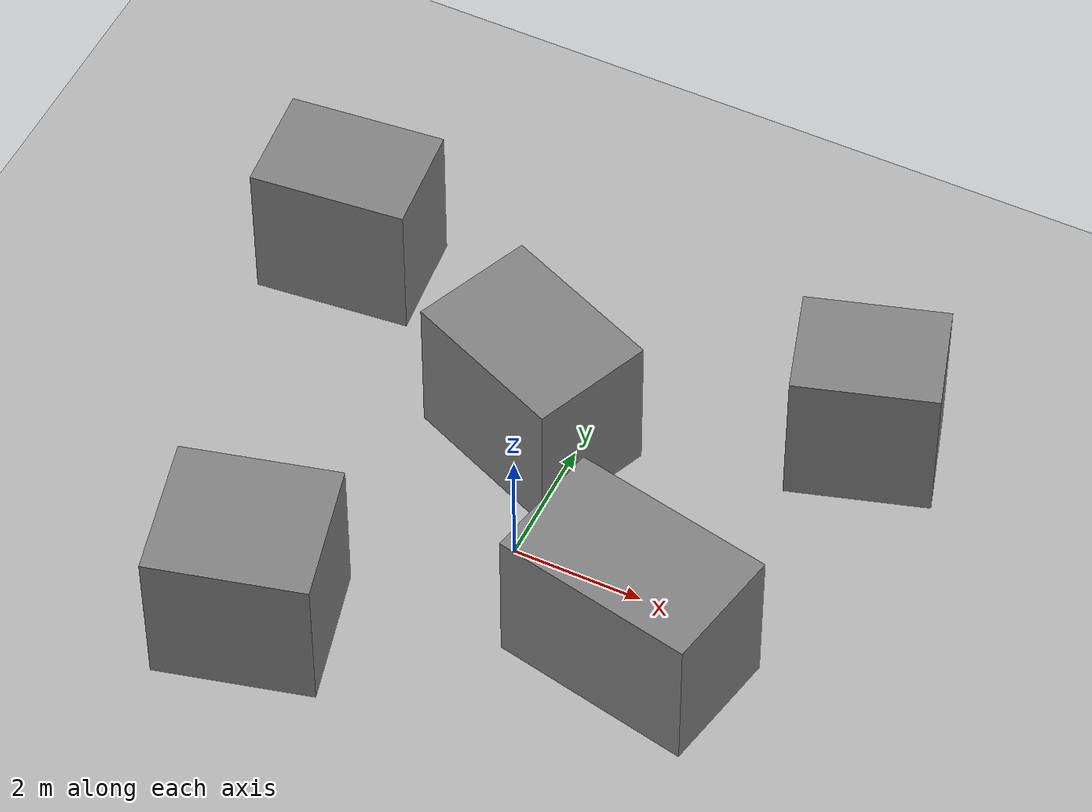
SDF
<?xml version="1.0" ?>
<sdf version='1.7'>
  <world name='default'>
    <light name='sun' type='directional'>
      <cast_shadows>1</cast_shadows>
      <pose>0 0 30 0 0 0</pose>
      <diffuse>0.8 0.8 0.8 1</diffuse>
      <specular>0.2 0.2 0.2 1</specular>
      <attenuation>
        <range>1000</range>
        <constant>0.9</constant>
        <linear>0.01</linear>
        <quadratic>0.001</quadratic>
      </attenuation>
      <direction>-0.5 0.1 -0.9</direction>
    </light>

    <model name='ground_plane'>
      <static>1</static>
      <link name='link'>
        <collision name='collision'>
          <geometry><plane><normal>0 0 1</normal><size>500 500</size></plane></geometry>
        </collision>
        <visual name='visual'>
          <cast_shadows>0</cast_shadows>
          <geometry><plane><normal>0 0 1</normal><size>500 500</size></plane></geometry>
          <material>
            <ambient>0.7 0.7 0.7 1</ambient>
            <diffuse>0.7 0.7 0.7 1</diffuse>
            <specular>0.2 0.2 0.2 1</specular>
          </material>
        </visual>
      </link>
    </model>

    <gravity>0 0 -9.8</gravity>
    <atmosphere type='adiabatic'/>
    <physics type='ode'>
      <max_step_size>0.004</max_step_size>
      <real_time_factor>1</real_time_factor>
      <real_time_update_rate>250</real_time_update_rate>
    </physics>

    <plugin filename="ignition-gazebo-physics-system" name="gz::sim::systems::Physics"/>
    <plugin filename="ignition-gazebo-sensors-system" name="gz::sim::systems::Sensors">
      <render_engine>ogre2</render_engine>
    </plugin>
    <plugin filename="ignition-gazebo-user-commands-system" name="gz::sim::systems::UserCommands"/>
    <plugin filename="ignition-gazebo-scene-broadcaster-system" name="gz::sim::systems::SceneBroadcaster"/>

    <scene>
      <ambient>0.4 0.4 0.4 1</ambient>
      <background>0.7 0.7 0.7 1</background>
      <shadows>1</shadows>
    </scene>

    <!-- (c) 近似：5m x 4.5m 小场地 + 更多障碍块（形成多通道） -->
    <model name='arena_c'>
      <static>1</static>
      <pose>0 0 0 0 0 0</pose>

      <!-- obstacles (整体放大 3 倍；去掉外边界围墙) -->
      <link name='block_01'>
        <pose>-4.5 3.6 1.5 0 0 0.1</pose>
        <collision name='collision'><geometry><box><size>2.4 1.68 2.4</size></box></geometry></collision>
        <visual name='visual'>
          <geometry><box><size>2.4 1.68 2.4</size></box></geometry>
          <material><ambient>0.5 0.5 0.5 1</ambient><diffuse>0.5 0.5 0.5 1</diffuse></material>
        </visual>
      </link>
      <link name='block_02'>
        <pose>-0.6 1.8 1.5 0 0 -0.4</pose>
        <collision name='collision'><geometry><box><size>2.64 1.92 2.4</size></box></geometry></collision>
        <visual name='visual'>
          <geometry><box><size>2.64 1.92 2.4</size></box></geometry>
          <material><ambient>0.5 0.5 0.5 1</ambient><diffuse>0.5 0.5 0.5 1</diffuse></material>
        </visual>
      </link>
      <link name='block_03'>
        <pose>3.9 3.6 1.5 0 0 0.3</pose>
        <collision name='collision'><geometry><box><size>2.16 1.68 2.4</size></box></geometry></collision>
        <visual name='visual'>
          <geometry><box><size>2.16 1.68 2.4</size></box></geometry>
          <material><ambient>0.5 0.5 0.5 1</ambient><diffuse>0.5 0.5 0.5 1</diffuse></material>
        </visual>
      </link>
      <link name='block_04'>
        <pose>2.4 -1.2 1.5 0 0 -0.2</pose>
        <collision name='collision'><geometry><box><size>3.12 1.92 2.4</size></box></geometry></collision>
        <visual name='visual'>
          <geometry><box><size>3.12 1.92 2.4</size></box></geometry>
          <material><ambient>0.5 0.5 0.5 1</ambient><diffuse>0.5 0.5 0.5 1</diffuse></material>
        </visual>
      </link>
      <link name='block_05'>
        <pose>-2.7 -3.0 1.5 0 0 0.25</pose>
        <collision name='collision'><geometry><box><size>2.4 2.16 2.4</size></box></geometry></collision>
        <visual name='visual'>
          <geometry><box><size>2.4 2.16 2.4</size></box></geometry>
          <material><ambient>0.5 0.5 0.5 1</ambient><diffuse>0.5 0.5 0.5 1</diffuse></material>
        </visual>
      </link>
    </model>

    <gui fullscreen='0'>
      <camera name='user_camera'>
        <pose>-24 0 21 0 0.85 0</pose>
        <view_controller>orbit</view_controller>
        <projection_type>perspective</projection_type>
      </camera>
    </gui>
  </world>
</sdf>
